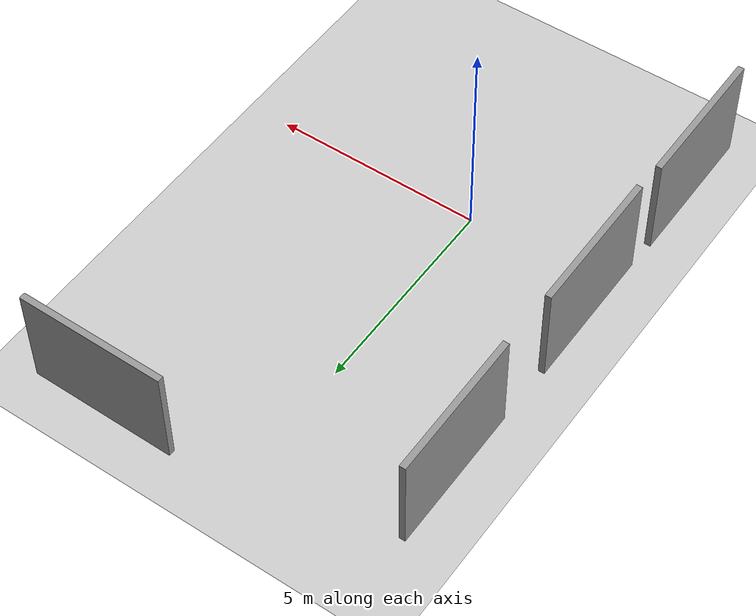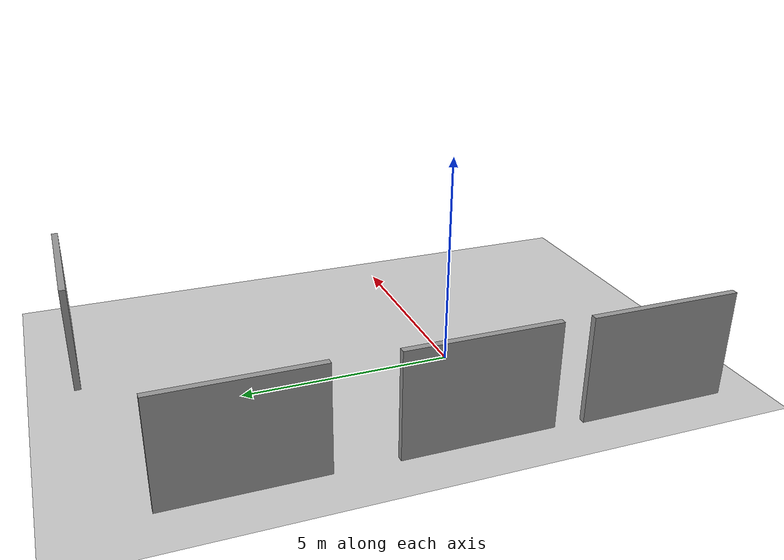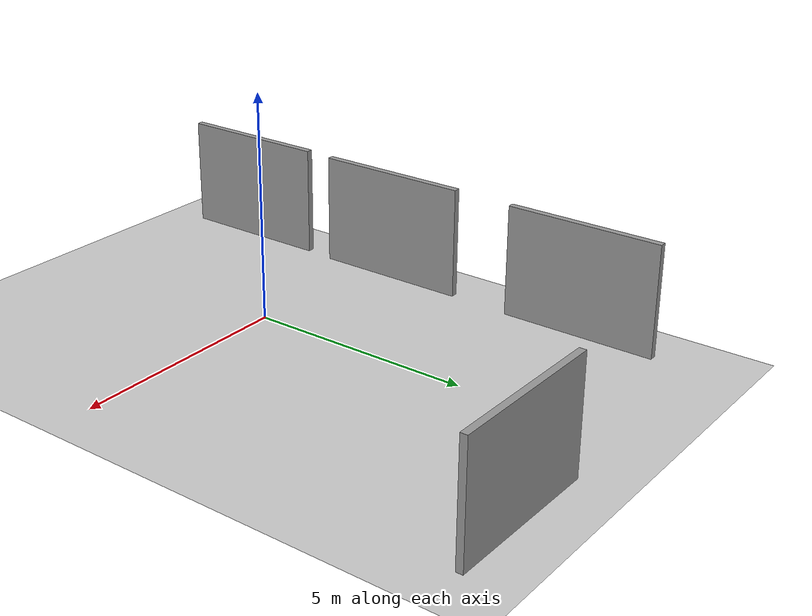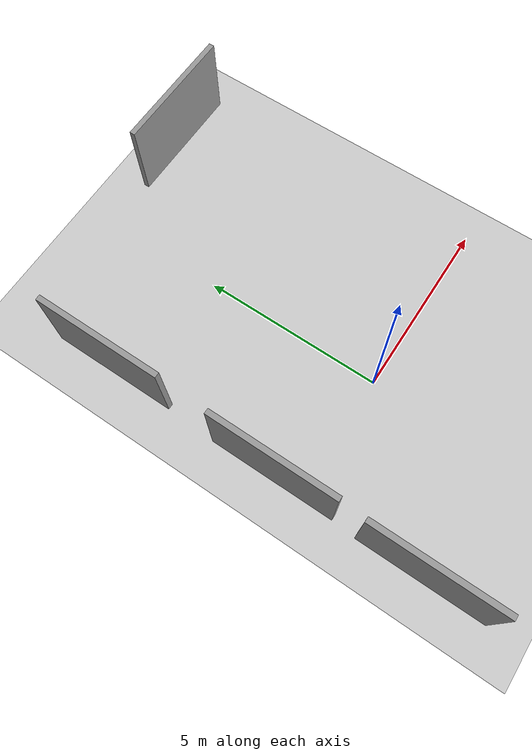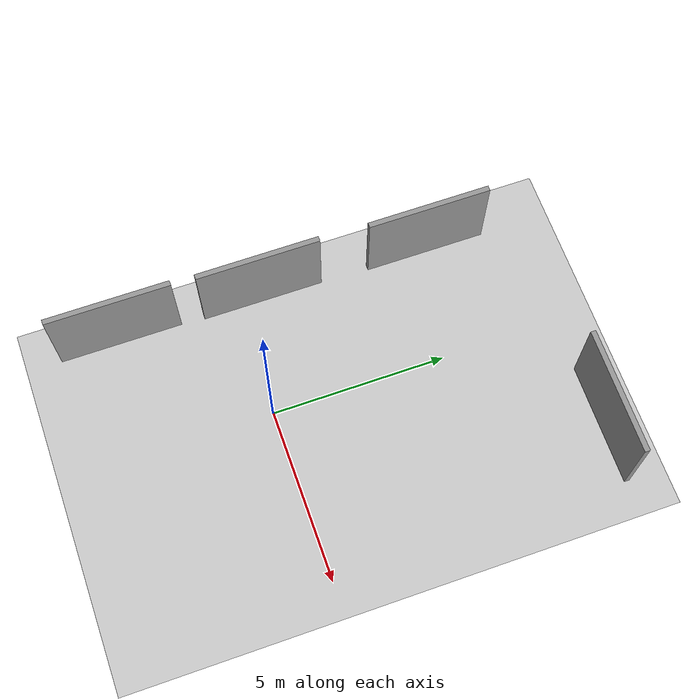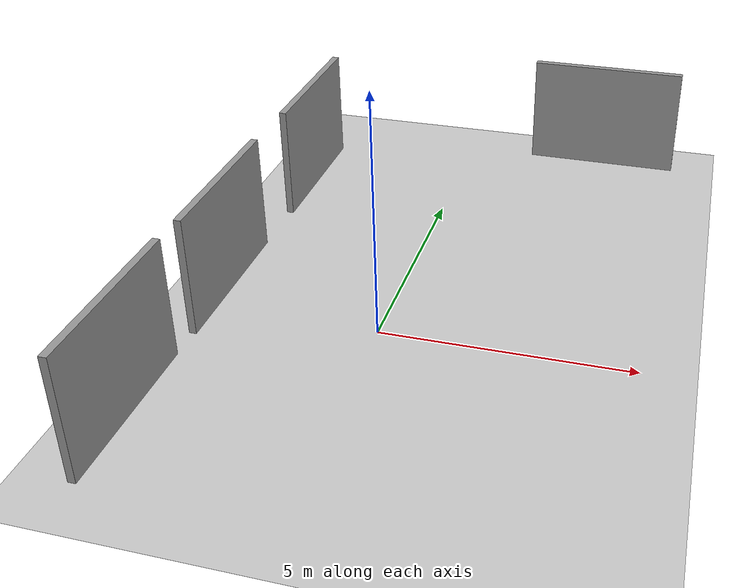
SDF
<sdf version="1.6">
 <world name="default">
  <light name="sun" type="directional">
   <pose>0 0 10 0 -0 0</pose>
   <diffuse>0.8 0.8 0.8 1</diffuse>
   <specular>0.1 0.1 0.1 1</specular>
   <attenuation>
    <range>1000</range>
    <constant>0.9</constant>
    <linear>0.01</linear>
    <quadratic>0.001</quadratic>
   </attenuation>
   <direction>-0.5 0.5 -1</direction>
  </light>
  <model name="ground_plane">
   <static>1</static>
   <link name="link">
    <collision name="collision">
     <geometry><plane><normal>0 0 1</normal><size>100 100</size></plane></geometry>
     <surface><friction><ode><mu>100</mu><mu2>50</mu2></ode></friction></surface>
    </collision>
    <visual name="visual">
     <cast_shadows>0</cast_shadows>
     <geometry><plane><normal>0 0 1</normal><size>100 100</size></plane></geometry>
     <material>
      <script><uri>file://media/materials/scripts/gazebo.material</uri><name>Gazebo/Grey</name></script>
     </material>
    </visual>
   </link>
  </model>
  <gravity>0 0 -9.8</gravity>
  <magnetic_field>6e-06 2.3e-05 -4.2e-05</magnetic_field>
  <atmosphere type="adiabatic"/>
  <physics name="default_physics" default="0" type="ode">
   <max_step_size>0.001</max_step_size>
   <real_time_factor>1</real_time_factor>
   <real_time_update_rate>1000</real_time_update_rate>
  </physics>
  <scene><ambient>0.4 0.4 0.4 1</ambient><background>0.7 0.7 0.7 1</background><shadows>1</shadows></scene>
  <spherical_coordinates>
   <surface_model>EARTH_WGS84</surface_model>
   <latitude_deg>0</latitude_deg>
   <longitude_deg>0</longitude_deg>
   <elevation>0</elevation>
   <heading_deg>0</heading_deg>
  </spherical_coordinates>
  <model name="test">
   <pose>-3.49 -3.355 0 0 -0 0</pose>
   <link name="Wall_0">
    <collision name="Wall_0_Collision">
     <geometry><box><size>3.5 0.15 2.5</size></box></geometry>
     <pose>0 0 1.25 0 -0 0</pose>
    </collision>
    <visual name="Wall_0_Visual">
     <pose>0 0 1.25 0 -0 0</pose>
     <geometry><box><size>3.5 0.15 2.5</size></box></geometry>
     <material>
      <script><uri>file://media/materials/scripts/gazebo.material</uri><name>Gazebo/Grey</name></script>
      <ambient>1 1 1 1</ambient>
     </material>
    </visual>
    <pose>0 0 0 0 0 -1.5708</pose>
   </link>
   <static>1</static>
  </model>
  <model name="test_0">
   <pose>-3.43389 0.811604 0 0 -0 0</pose>
   <link name="Wall_0">
    <collision name="Wall_0_Collision">
     <geometry><box><size>3.5 0.15 2.5</size></box></geometry>
     <pose>0 0 1.25 0 -0 0</pose>
    </collision>
    <visual name="Wall_0_Visual">
     <pose>0 0 1.25 0 -0 0</pose>
     <geometry><box><size>3.5 0.15 2.5</size></box></geometry>
     <material>
      <script><uri>file://media/materials/scripts/gazebo.material</uri><name>Gazebo/Grey</name></script>
      <ambient>1 1 1 1</ambient>
     </material>
    </visual>
    <pose>0 0 0 0 0 -1.5708</pose>
   </link>
   <static>1</static>
  </model>
  <model name="test_1">
   <pose>-3.37224 5.71016 0 0 -0 0</pose>
   <link name="Wall_0">
    <collision name="Wall_0_Collision">
     <geometry><box><size>3.5 0.15 2.5</size></box></geometry>
     <pose>0 0 1.25 0 -0 0</pose>
    </collision>
    <visual name="Wall_0_Visual">
     <pose>0 0 1.25 0 -0 0</pose>
     <geometry><box><size>3.5 0.15 2.5</size></box></geometry>
     <material>
      <script><uri>file://media/materials/scripts/gazebo.material</uri><name>Gazebo/Grey</name></script>
      <ambient>1 1 1 1</ambient>
     </material>
    </visual>
    <pose>0 0 0 0 0 -1.5708</pose>
   </link>
   <static>1</static>
  </model>
  <model name="test_2">
   <pose>3.26421 8.42341 0 0 0 -1.57784</pose>
   <link name="Wall_0">
    <collision name="Wall_0_Collision">
     <geometry><box><size>3.5 0.15 2.5</size></box></geometry>
     <pose>0 0 1.25 0 -0 0</pose>
    </collision>
    <visual name="Wall_0_Visual">
     <pose>0 0 1.25 0 -0 0</pose>
     <geometry><box><size>3.5 0.15 2.5</size></box></geometry>
     <material>
      <script><uri>file://media/materials/scripts/gazebo.material</uri><name>Gazebo/Grey</name></script>
      <ambient>1 1 1 1</ambient>
     </material>
    </visual>
    <pose>0 0 0 0 0 -1.5708</pose>
   </link>
   <static>1</static>
  </model>
 </world>
</sdf>
